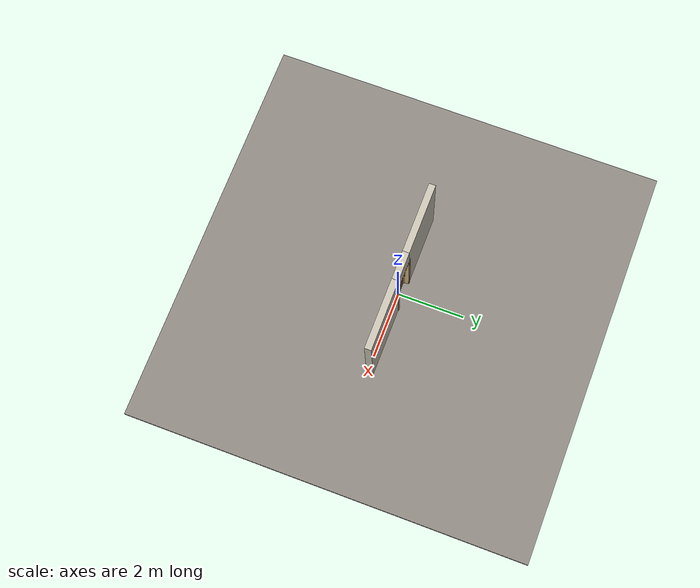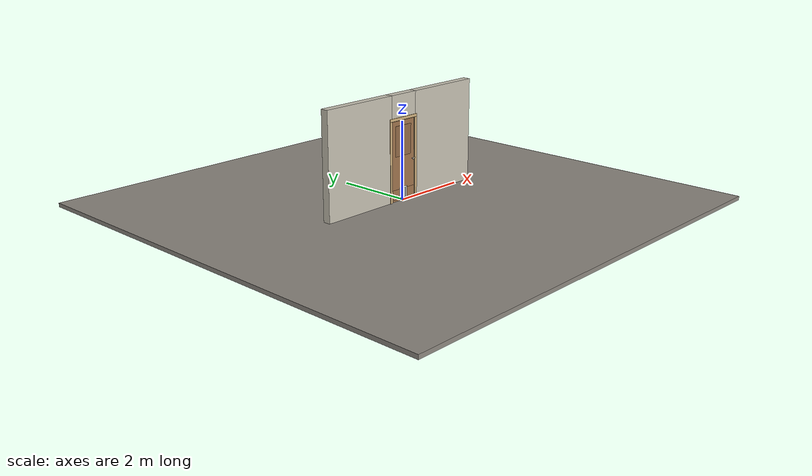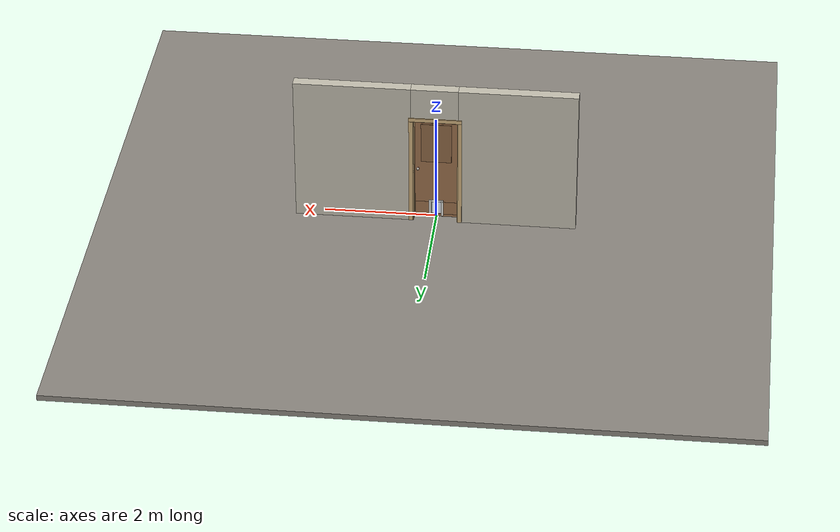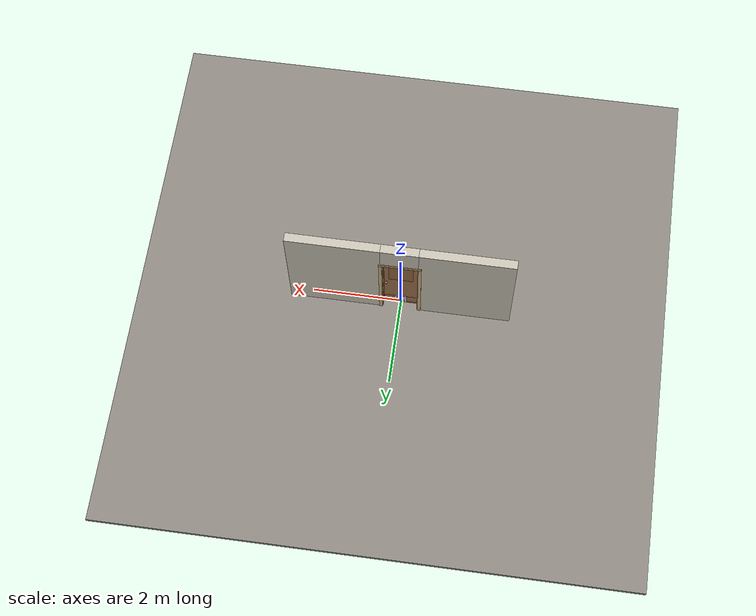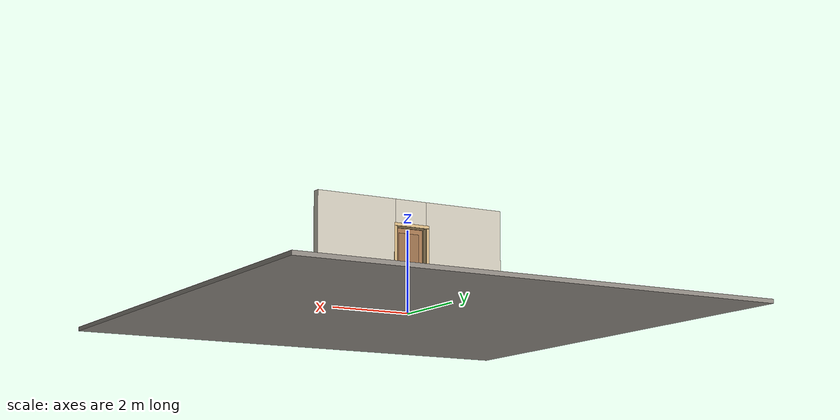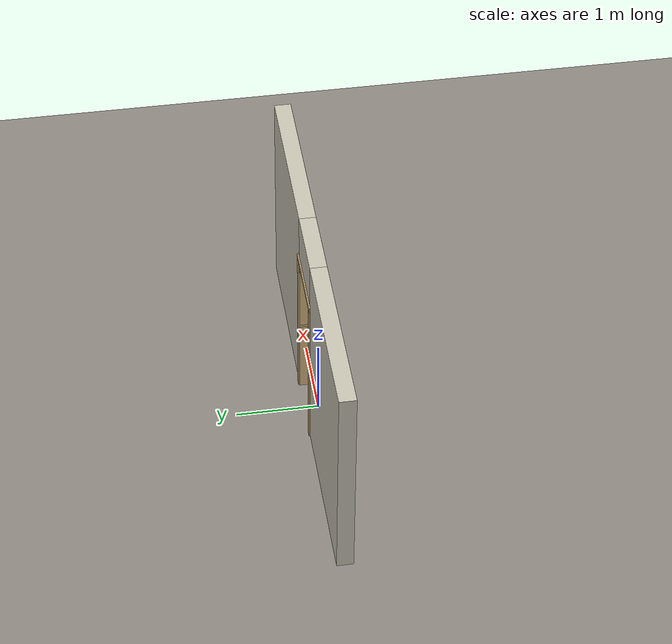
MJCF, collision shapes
<?xml version="1.0" ?>
<mujoco model="db0169_swing_single_full">
  <compiler angle="radian" meshdir="../../hardware" texturedir="../../textures" autolimits="true" inertiafromgeom="false"/>
  <option timestep="0.002" integrator="implicitfast" cone="elliptic" impratio="10" noslip_iterations="3">
    <flag multiccd="enable"/>
  </option>
  <size memory="16M"/>
  <default>
    <geom condim="4" solref="0.005 1" solimp="0.95 0.99 0.001"/>
    <joint solreflimit="0.005 1" solimplimit="0.95 0.99 0.001"/>
    <tendon solreflimit="0.005 1"/>
    <equality solref="0.002 1"/>
  </default>
  <visual>
    <headlight ambient="0.4 0.4 0.4" diffuse="0.7 0.7 0.7" specular="0.2 0.2 0.2"/>
    <quality shadowsize="4096"/>
    <map znear="0.01" zfar="60"/>
  </visual>
  <asset>
    <mesh name="hinge_2af0f4d6ca" file="hinge_2af0f4d6ca.obj"/>
    <mesh name="hinge_jamb_c0c0a62ada" file="hinge_jamb_c0c0a62ada.obj"/>
    <mesh name="knob_248d825e64" file="knob_248d825e64.obj"/>
    <mesh name="knob_d1888f6f03" file="knob_d1888f6f03.obj"/>
    <material name="mat_floor" rgba="0.55 0.53 0.5 1" specular="0.2" shininess="0.15" reflectance="0"/>
    <material name="mat_wall" rgba="0.78 0.76 0.7 1" specular="0.2" shininess="0.1" reflectance="0"/>
    <material name="mat_leaf" rgba="0.62 0.45 0.3 1" specular="0.2" shininess="0.5" reflectance="0"/>
    <material name="mat_leaf_panel" rgba="0.57 0.414 0.276 1" specular="0.2" shininess="0.5" reflectance="0"/>
    <material name="mat_hinge" rgba="0.65 0.66 0.68 1" specular="0.74" shininess="0.5" reflectance="0.36"/>
    <material name="mat_op_nickel_satin" rgba="0.72 0.7 0.66 1" specular="0.8" shininess="0.65" reflectance="0.4"/>
    <material name="mat_trim" rgba="0.85 0.66 0.3 1" specular="0.8" shininess="0.75" reflectance="0.4"/>
    <material name="mat_bolt" rgba="0.85 0.66 0.3 1" specular="0.8" shininess="0.75" reflectance="0.4"/>
    <material name="mat_frame" rgba="0.82 0.7 0.5 1" specular="0.2" shininess="0.45" reflectance="0"/>
    <material name="mat_petframe" rgba="0.92 0.92 0.9 1" specular="0.2" shininess="0.6" reflectance="0"/>
    <material name="mat_petflap" rgba="0.9 0.92 0.95 0.3" specular="0.2" shininess="0.9" reflectance="0.1"/>
    <texture name="skybox" type="skybox" builtin="gradient" rgb1="0.6 0.7 0.85" rgb2="0.9 0.92 0.95" width="256" height="256"/>
  </asset>
  <worldbody>
    <light name="sun" pos="1.5 -2.5 4" dir="-0.3 0.5 -0.8" directional="true" diffuse="0.8 0.8 0.8" specular="0.3 0.3 0.3" castshadow="true"/>
    <light name="fill" pos="-1.5 2.5 3" dir="0.3 -0.5 -0.7" directional="true" diffuse="0.35 0.35 0.4" castshadow="false"/>
    <camera name="robot_view" pos="0 -2.471187 1.734312" xyaxes="1 0 0 0 0.26963 0.962964" fovy="52"/>
    <camera name="far_view" pos="0 2.613187 1.734312" xyaxes="-1 0 0 0 -0.26963 0.962964" fovy="52"/>
    <camera name="iso" pos="1.932062 -2.064437 2.141063" xyaxes="0.741536 0.670913 0 -0.242917 0.268487 0.932151" fovy="46"/>
    <camera name="detail_handle" pos="0.5 -0.8685 1.296" xyaxes="0.97561 0.219512 0 -0.070934 0.315262 0.94635" fovy="38"/>
    <geom name="floor" type="box" size="6 6 0.05" pos="0 0 -0.05" material="mat_floor" group="0" contype="1" conaffinity="1" friction="0.8 0.005 0.0001" density="2400"/>
    <geom name="wall_left" type="box" size="1.048 0.1 1.35" pos="-1.452 0.071 1.35" material="mat_wall" group="0" contype="1" conaffinity="1" friction="0.6 0.005 0.0001" density="800"/>
    <geom name="wall_right" type="box" size="1.033 0.1 1.35" pos="1.467 0.071 1.35" material="mat_wall" group="0" contype="1" conaffinity="1" friction="0.6 0.005 0.0001" density="800"/>
    <geom name="wall_header" type="box" size="0.419 0.1 0.303" pos="0.015 0.071 2.397" material="mat_wall" group="0" contype="1" conaffinity="1" friction="0.6 0.005 0.0001" density="800"/>
    <geom name="hinge_0_jamb" type="mesh" mesh="hinge_jamb_c0c0a62ada" pos="-0.382 -0.029 0.259" material="mat_hinge" group="1" contype="0" conaffinity="0" density="7850"/>
    <geom name="hinge_1_jamb" type="mesh" mesh="hinge_jamb_c0c0a62ada" pos="-0.382 -0.029 1.025" material="mat_hinge" group="1" contype="0" conaffinity="0" density="7850"/>
    <geom name="hinge_2_jamb" type="mesh" mesh="hinge_jamb_c0c0a62ada" pos="-0.382 -0.029 1.861" material="mat_hinge" group="1" contype="0" conaffinity="0" density="7850"/>
    <geom name="jamb_hinge" type="box" size="0.0095 0.1 1.0225" pos="-0.3945 0.071 1.0225" material="mat_frame" group="0" contype="1" conaffinity="1" friction="0.6 0.005 0.0001" density="400"/>
    <geom name="strike_1016_wall_n" type="box" size="0.0245 0.081575 0.0167" pos="0.4095 0.089425 1.016" material="mat_frame" group="0" contype="1" conaffinity="1" friction="0.6 0.005 0.0001" density="400"/>
    <geom name="strike_1016_wall_p" type="box" size="0.0245 0.008 0.0167" pos="0.4095 -0.01585 1.016" material="mat_frame" group="0" contype="1" conaffinity="1" friction="0.6 0.005 0.0001" density="400"/>
    <geom name="strike_1016_ramp" type="box" size="0.0245 0.01649 0.0167" pos="0.414136 -0.028673 1.016" quat="0.977148 0 0 0.212558" material="mat_frame" group="0" contype="1" conaffinity="1" friction="0.12 0.005 0.0001" density="400"/>
    <geom name="strike_1016_back" type="box" size="0.01615 0.00785 0.0167" pos="0.41785 0 1.016" material="mat_frame" group="0" contype="1" conaffinity="1" friction="0.6 0.005 0.0001" density="400"/>
    <geom name="jamb_strike_0" type="box" size="0.0245 0.1 0.49965" pos="0.4095 0.071 0.49965" material="mat_frame" group="0" contype="1" conaffinity="1" friction="0.6 0.005 0.0001" density="400"/>
    <geom name="jamb_strike_1" type="box" size="0.0245 0.1 0.50615" pos="0.4095 0.071 1.53885" material="mat_frame" group="0" contype="1" conaffinity="1" friction="0.6 0.005 0.0001" density="400"/>
    <geom name="jamb_head" type="box" size="0.419 0.1 0.0095" pos="0.015 0.071 2.0545" material="mat_frame" group="0" contype="1" conaffinity="1" friction="0.6 0.005 0.0001" density="400"/>
    <geom name="head_stud" type="box" size="0.419 0.1 0.015" pos="0.015 0.071 2.079" material="mat_wall" group="0" contype="1" conaffinity="1" friction="0.6 0.005 0.0001" density="500"/>
    <geom name="stop_hinge" type="box" size="0.0055 0.016 1.0225" pos="-0.3795 0.0385 1.0225" material="mat_frame" group="0" contype="1" conaffinity="1" friction="0.6 0.005 0.0001" density="400"/>
    <geom name="stop_strike" type="box" size="0.0055 0.016 1.0225" pos="0.3795 0.0385 1.0225" material="mat_frame" group="0" contype="1" conaffinity="1" friction="0.6 0.005 0.0001" density="400"/>
    <geom name="stop_head" type="box" size="0.385 0.016 0.0055" pos="0 0.0385 2.0395" material="mat_frame" group="0" contype="1" conaffinity="1" friction="0.6 0.005 0.0001" density="400"/>
    <geom name="casing_l_n" type="box" size="0.035 0.008 1.032" pos="-0.434 -0.037 1.0225" material="mat_frame" group="2" contype="0" conaffinity="0" density="400"/>
    <geom name="casing_r_n" type="box" size="0.035 0.008 1.032" pos="0.434 -0.037 1.0225" material="mat_frame" group="2" contype="0" conaffinity="0" density="400"/>
    <geom name="casing_h_n" type="box" size="0.469 0.008 0.035" pos="0 -0.037 2.094" material="mat_frame" group="2" contype="0" conaffinity="0" density="400"/>
    <geom name="casing_l_p" type="box" size="0.035 0.008 1.032" pos="-0.434 0.179 1.0225" material="mat_frame" group="2" contype="0" conaffinity="0" density="400"/>
    <geom name="casing_r_p" type="box" size="0.035 0.008 1.032" pos="0.434 0.179 1.0225" material="mat_frame" group="2" contype="0" conaffinity="0" density="400"/>
    <geom name="casing_h_p" type="box" size="0.469 0.008 0.035" pos="0 0.179 2.094" material="mat_frame" group="2" contype="0" conaffinity="0" density="400"/>
    <site name="approach_point" pos="0 -1.5 0" quat="1 0 0 0" size="0.05" rgba="0.2 0.9 0.2 0.5" group="4"/>
    <site name="goal_point" pos="0 1.5 0" quat="1 0 0 0" size="0.05" rgba="0.2 0.9 0.2 0.5" group="4"/>
    <site name="door_plane_center" pos="0 0 1.0225" quat="1 0 0 0" size="0.02" rgba="0.2 0.9 0.2 0.5" group="4"/>
    <body name="leaf" pos="-0.385 0 0">
      <inertial pos="0.380616 -0.000141 1.01037" mass="49.493496" quat="-0.499839 0.500381 -0.499611 -0.500169" diaginertia="2.420818234 17.278663065 19.682734211"/>
      <joint name="leaf_hinge" type="hinge" axis="0 0 -1" pos="0.003 -0.029 0" limited="true" range="0 1.745329" damping="0.173726" frictionloss="5.469527" armature="0.02"/>
      <geom name="leaf_slab_below" type="box" size="0.381 0.022 0.0245" pos="0.384 0 0.0335" material="mat_leaf" group="0" contype="1" conaffinity="1" friction="0.4 0.005 0.0001" density="1"/>
      <geom name="leaf_slab_above" type="box" size="0.381 0.022 0.8655" pos="0.384 0 1.1755" material="mat_leaf" group="0" contype="1" conaffinity="1" friction="0.4 0.005 0.0001" density="1"/>
      <geom name="leaf_slab_left" type="box" size="0.145 0.022 0.126" pos="0.148 0 0.184" material="mat_leaf" group="0" contype="1" conaffinity="1" friction="0.4 0.005 0.0001" density="1"/>
      <geom name="leaf_slab_right" type="box" size="0.145 0.022 0.126" pos="0.62 0 0.184" material="mat_leaf" group="0" contype="1" conaffinity="1" friction="0.4 0.005 0.0001" density="1"/>
      <geom name="leaf_panel_1_n" type="box" size="0.271 0.003 0.38422" pos="0.384 -0.025 1.53518" material="mat_leaf_panel" group="1" contype="0" conaffinity="0" density="1"/>
      <geom name="leaf_panel_1_p" type="box" size="0.271 0.003 0.38422" pos="0.384 0.025 1.53518" material="mat_leaf_panel" group="1" contype="0" conaffinity="0" density="1"/>
      <geom name="hinge_0" type="mesh" mesh="hinge_2af0f4d6ca" pos="0.003 -0.029 0.259" material="mat_hinge" group="1" contype="0" conaffinity="0" density="7850"/>
      <geom name="hinge_1" type="mesh" mesh="hinge_2af0f4d6ca" pos="0.003 -0.029 1.025" material="mat_hinge" group="1" contype="0" conaffinity="0" density="7850"/>
      <geom name="hinge_2" type="mesh" mesh="hinge_2af0f4d6ca" pos="0.003 -0.029 1.861" material="mat_hinge" group="1" contype="0" conaffinity="0" density="7850"/>
      <geom name="leaf_latch_bolt_faceplate" type="box" size="0.0006 0.01235 0.0267" pos="0.7644 0 1.016" material="mat_bolt" group="1" contype="0" conaffinity="0" density="8500"/>
      <geom name="pet_frame_top" type="box" size="0.13 0.028 0.02" pos="0.384 0 0.329" material="mat_petframe" group="2" contype="0" conaffinity="0" density="1200"/>
      <geom name="pet_frame_l" type="box" size="0.02 0.028 0.165" pos="0.274 0 0.184" material="mat_petframe" group="2" contype="0" conaffinity="0" density="1200"/>
      <geom name="pet_frame_r" type="box" size="0.02 0.028 0.165" pos="0.494 0 0.184" material="mat_petframe" group="2" contype="0" conaffinity="0" density="1200"/>
      <site name="leaf_edge_mid" pos="0.765 0 1.016" quat="1 0 0 0" size="0.02" rgba="0.2 0.9 0.2 0.5" group="4"/>
      <body name="leaf_handle" pos="0.705 0 1.016">
        <inertial pos="0 -0.000225 0" mass="1.154652" quat="0.5 0.5 0.5 0.5" diaginertia="0.000312546 0.004289529 0.004289529"/>
        <joint name="leaf_handle_hinge" type="hinge" axis="0 -1 0" limited="true" range="0 0.87" damping="0.143614" frictionloss="0.038" stiffness="0.5" springref="-0.5" armature="0.01"/>
        <geom name="leaf_handle_spindle" type="cylinder" size="0.006 0.03" pos="0 0 0" quat="0.707107 -0.707107 0 0" material="mat_op_nickel_satin" group="1" contype="0" conaffinity="0" density="7850"/>
        <geom name="leaf_handle_knob_n" type="mesh" mesh="knob_248d825e64" pos="0 -0.022 0" quat="0.707107 0.707107 0 0" material="mat_op_nickel_satin" group="1" contype="0" conaffinity="0" density="3000"/>
        <geom name="leaf_handle_knob_col_n" type="sphere" size="0.0243" pos="0 -0.0685 0" material="mat_op_nickel_satin" group="0" contype="1" conaffinity="1" friction="0.9 0.01 0.0001" density="3000"/>
        <geom name="leaf_handle_knob_neck_n" type="cylinder" size="0.011 0.012" pos="0 -0.034 0" quat="0.707107 -0.707107 0 0" material="mat_op_nickel_satin" group="3" contype="1" conaffinity="1" rgba="0.8 0.3 0.3 0.25" friction="0.6 0.005 0.0001" density="3000"/>
        <geom name="leaf_handle_knob_p" type="mesh" mesh="knob_d1888f6f03" pos="0 0.022 0" quat="-0.707107 0.707107 0 0" material="mat_op_nickel_satin" group="1" contype="0" conaffinity="0" density="3000"/>
        <geom name="leaf_handle_knob_col_p" type="sphere" size="0.0243" pos="0 0.0685 0" material="mat_op_nickel_satin" group="0" contype="1" conaffinity="1" friction="0.9 0.01 0.0001" density="3000"/>
        <geom name="leaf_handle_knob_neck_p" type="cylinder" size="0.011 0.012" pos="0 0.034 0" quat="0.707107 -0.707107 0 0" material="mat_op_nickel_satin" group="3" contype="1" conaffinity="1" rgba="0.8 0.3 0.3 0.25" friction="0.6 0.005 0.0001" density="3000"/>
        <site name="leaf_handle_grip_n" pos="0 -0.0685 0" quat="1 0 0 0" size="0.012" rgba="0.2 0.9 0.2 0.5" group="4"/>
        <site name="leaf_handle_grip_p" pos="0 0.0685 0" quat="1 0 0 0" size="0.012" rgba="0.2 0.9 0.2 0.5" group="4"/>
      </body>
      <body name="leaf_latch_bolt" pos="0.765 0 1.016">
        <inertial pos="-0.00865 0 0" mass="0.041419" quat="0.92388 -0.382683 0 0" diaginertia="0.000000798 0.000005598 0.000005598"/>
        <joint name="leaf_latch_bolt_slide" type="slide" axis="-1 0 0" limited="true" range="0 0.0127" damping="2" frictionloss="0.3" stiffness="300" springref="-0.008333" armature="0.1"/>
        <geom name="leaf_latch_bolt_capsule" type="capsule" size="0.00635 0.015" pos="-0.00865 0 0" quat="0.707107 0 0.707107 0" material="mat_bolt" group="0" contype="1" conaffinity="1" friction="0.2 0.005 0.0001" density="8500"/>
      </body>
      <body name="pet_flap" pos="0.384 0 0.309">
        <inertial pos="0 0 -0.125" mass="0.140661" quat="-0.5 0.5 0.5 0.5" diaginertia="0.000347068 0.000686763 0.001033246"/>
        <joint name="pet_flap_hinge" type="hinge" axis="1 0 0" limited="true" range="-1.45 1.45" damping="0.02" frictionloss="0.02" armature="0.005"/>
        <geom name="pet_flap_geom" type="box" size="0.086 0.0025 0.121" pos="0 0 -0.125" material="mat_petflap" group="0" contype="1" conaffinity="1" friction="0.6 0.005 0.0001" density="1180"/>
      </body>
    </body>
  </worldbody>
  <tendon>
    <fixed name="leaf_latch_bolt_coupling" limited="true" range="0 10">
      <joint joint="leaf_latch_bolt_slide" coef="1"/>
      <joint joint="leaf_handle_hinge" coef="-0.015679"/>
    </fixed>
  </tendon>
  <sensor>
    <jointpos name="leaf_hinge_pos" joint="leaf_hinge"/>
    <jointvel name="leaf_hinge_vel" joint="leaf_hinge"/>
    <jointpos name="leaf_handle_hinge_pos" joint="leaf_handle_hinge"/>
    <jointvel name="leaf_handle_hinge_vel" joint="leaf_handle_hinge"/>
    <jointpos name="leaf_latch_bolt_slide_pos" joint="leaf_latch_bolt_slide"/>
    <jointvel name="leaf_latch_bolt_slide_vel" joint="leaf_latch_bolt_slide"/>
    <jointpos name="pet_flap_hinge_pos" joint="pet_flap_hinge"/>
    <jointvel name="pet_flap_hinge_vel" joint="pet_flap_hinge"/>
  </sensor>
</mujoco>
